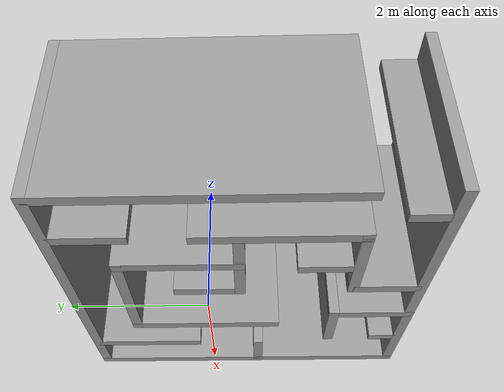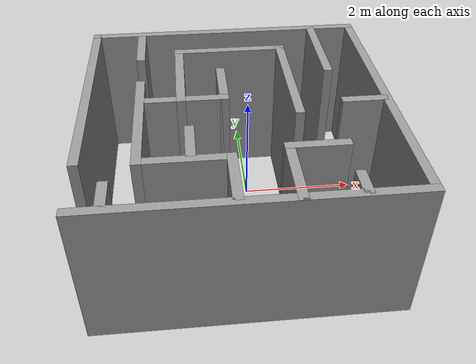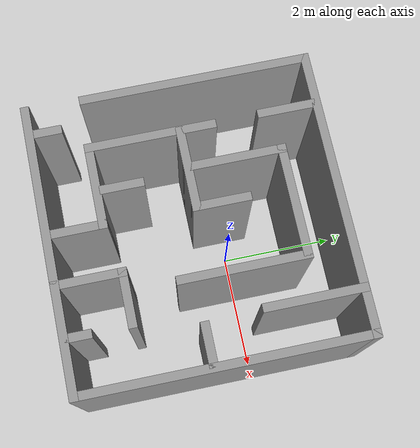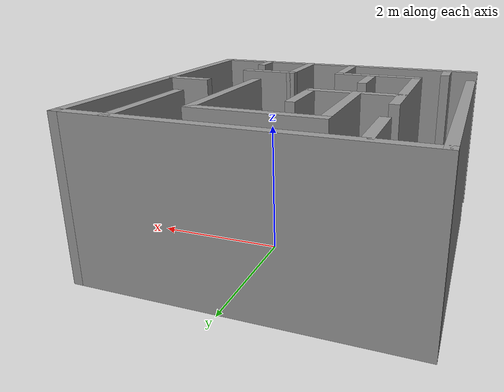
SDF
<?xml version='1.0'?>
<sdf version='1.7'>
  <model name='maze'>
    <pose>-0.245514 -0.533477 0 0 -0 0</pose>
    <link name='Wall_14'>
      <collision name='Wall_14_Collision'>
        <geometry>
          <box>
            <size>5 0.15 2.5</size>
          </box>
        </geometry>
        <pose>0 0 1.25 0 -0 0</pose>
      </collision>
      <visual name='Wall_14_Visual'>
        <pose>0 0 1.25 0 -0 0</pose>
        <geometry>
          <box>
            <size>5 0.15 2.5</size>
          </box>
        </geometry>
        <material>
          <script>
            <uri>file://media/materials/scripts/gazebo.material</uri>
            <name>Gazebo/Grey</name>
          </script>
          <ambient>1 1 1 1</ambient>
        </material>
        <meta>
          <layer>0</layer>
        </meta>
      </visual>
      <pose>-0 -2.425 0 0 -0 0</pose>
    </link>
    <link name='Wall_15'>
      <collision name='Wall_15_Collision'>
        <geometry>
          <box>
            <size>5 0.15 2.5</size>
          </box>
        </geometry>
        <pose>0 0 1.25 0 -0 0</pose>
      </collision>
      <visual name='Wall_15_Visual'>
        <pose>0 0 1.25 0 -0 0</pose>
        <geometry>
          <box>
            <size>5 0.15 2.5</size>
          </box>
        </geometry>
        <material>
          <script>
            <uri>file://media/materials/scripts/gazebo.material</uri>
            <name>Gazebo/Grey</name>
          </script>
          <ambient>1 1 1 1</ambient>
        </material>
        <meta>
          <layer>0</layer>
        </meta>
      </visual>
      <pose>2.425 -0 0 0 -0 1.5708</pose>
    </link>
    <link name='Wall_16'>
      <collision name='Wall_16_Collision'>
        <geometry>
          <box>
            <size>5 0.15 2.5</size>
          </box>
        </geometry>
        <pose>0 0 1.25 0 -0 0</pose>
      </collision>
      <visual name='Wall_16_Visual'>
        <pose>0 0 1.25 0 -0 0</pose>
        <geometry>
          <box>
            <size>5 0.15 2.5</size>
          </box>
        </geometry>
        <material>
          <script>
            <uri>file://media/materials/scripts/gazebo.material</uri>
            <name>Gazebo/Grey</name>
          </script>
          <ambient>1 1 1 1</ambient>
        </material>
        <meta>
          <layer>0</layer>
        </meta>
      </visual>
      <pose>-0 2.425 0 0 -0 3.14159</pose>
    </link>
    <link name='Wall_17'>
      <collision name='Wall_17_Collision'>
        <geometry>
          <box>
            <size>4 0.15 2.5</size>
          </box>
        </geometry>
        <pose>0 0 1.25 0 -0 0</pose>
      </collision>
      <visual name='Wall_17_Visual'>
        <pose>0 0 1.25 0 -0 0</pose>
        <geometry>
          <box>
            <size>4 0.15 2.5</size>
          </box>
        </geometry>
        <material>
          <script>
            <uri>file://media/materials/scripts/gazebo.material</uri>
            <name>Gazebo/Grey</name>
          </script>
          <ambient>1 1 1 1</ambient>
        </material>
        <meta>
          <layer>0</layer>
        </meta>
      </visual>
      <pose>-2.425 0.5 0 0 -0 -1.5708</pose>
    </link>
    <link name='Wall_22'>
      <collision name='Wall_22_Collision'>
        <geometry>
          <box>
            <size>2.25 0.15 2.5</size>
          </box>
        </geometry>
        <pose>0 0 1.25 0 -0 0</pose>
      </collision>
      <visual name='Wall_22_Visual'>
        <pose>0 0 1.25 0 -0 0</pose>
        <geometry>
          <box>
            <size>2.25 0.15 2.5</size>
          </box>
        </geometry>
        <material>
          <script>
            <uri>file://media/materials/scripts/gazebo.material</uri>
            <name>Gazebo/Grey</name>
          </script>
          <ambient>1 1 1 1</ambient>
        </material>
        <meta>
          <layer>0</layer>
        </meta>
      </visual>
      <pose>-1.56012 -0.437851 0 0 -0 -1.5708</pose>
    </link>
    <link name='Wall_23'>
      <collision name='Wall_23_Collision'>
        <geometry>
          <box>
            <size>1.5 0.15 2.5</size>
          </box>
        </geometry>
        <pose>0 0 1.25 0 -0 0</pose>
      </collision>
      <visual name='Wall_23_Visual'>
        <pose>0 0 1.25 0 -0 0</pose>
        <geometry>
          <box>
            <size>1.5 0.15 2.5</size>
          </box>
        </geometry>
        <material>
          <script>
            <uri>file://media/materials/scripts/gazebo.material</uri>
            <name>Gazebo/Grey</name>
          </script>
          <ambient>1 1 1 1</ambient>
        </material>
        <meta>
          <layer>0</layer>
        </meta>
      </visual>
      <pose>-0.885116 -1.48785 0 0 -0 0</pose>
    </link>
    <link name='Wall_24'>
      <collision name='Wall_24_Collision'>
        <geometry>
          <box>
            <size>1 0.15 2.5</size>
          </box>
        </geometry>
        <pose>0 0 1.25 0 -0 0</pose>
      </collision>
      <visual name='Wall_24_Visual'>
        <pose>0 0 1.25 0 -0 0</pose>
        <geometry>
          <box>
            <size>1 0.15 2.5</size>
          </box>
        </geometry>
        <material>
          <script>
            <uri>file://media/materials/scripts/gazebo.material</uri>
            <name>Gazebo/Grey</name>
          </script>
          <ambient>1 1 1 1</ambient>
        </material>
        <meta>
          <layer>0</layer>
        </meta>
      </visual>
      <pose>-0.210116 -1.91285 0 0 -0 -1.5708</pose>
    </link>
    <link name='Wall_26'>
      <collision name='Wall_26_Collision'>
        <geometry>
          <box>
            <size>1 0.15 2.5</size>
          </box>
        </geometry>
        <pose>0 0 1.25 0 -0 0</pose>
      </collision>
      <visual name='Wall_26_Visual'>
        <pose>0 0 1.25 0 -0 0</pose>
        <geometry>
          <box>
            <size>1 0.15 2.5</size>
          </box>
        </geometry>
        <material>
          <script>
            <uri>file://media/materials/scripts/gazebo.material</uri>
            <name>Gazebo/Grey</name>
          </script>
          <ambient>1 1 1 1</ambient>
        </material>
        <meta>
          <layer>0</layer>
        </meta>
      </visual>
      <pose>-1.58023 1.90203 0 0 -0 1.5708</pose>
    </link>
    <link name='Wall_48'>
      <collision name='Wall_48_Collision'>
        <geometry>
          <box>
            <size>1.5 0.15 2.5</size>
          </box>
        </geometry>
        <pose>0 0 1.25 0 -0 0</pose>
      </collision>
      <visual name='Wall_48_Visual'>
        <pose>0 0 1.25 0 -0 0</pose>
        <geometry>
          <box>
            <size>1.5 0.15 2.5</size>
          </box>
        </geometry>
        <material>
          <script>
            <uri>file://media/materials/scripts/gazebo.material</uri>
            <name>Gazebo/Grey</name>
          </script>
          <ambient>1 1 1 1</ambient>
        </material>
        <meta>
          <layer>0</layer>
        </meta>
      </visual>
      <pose>-0.870882 0.067288 0 0 -0 0</pose>
    </link>
    <link name='Wall_49'>
      <collision name='Wall_49_Collision'>
        <geometry>
          <box>
            <size>1 0.15 2.5</size>
          </box>
        </geometry>
        <pose>0 0 1.25 0 -0 0</pose>
      </collision>
      <visual name='Wall_49_Visual'>
        <pose>0 0 1.25 0 -0 0</pose>
        <geometry>
          <box>
            <size>1 0.15 2.5</size>
          </box>
        </geometry>
        <material>
          <script>
            <uri>file://media/materials/scripts/gazebo.material</uri>
            <name>Gazebo/Grey</name>
          </script>
          <ambient>1 1 1 1</ambient>
        </material>
        <meta>
          <layer>0</layer>
        </meta>
      </visual>
      <pose>-0.195882 0.492288 0 0 -0 1.5708</pose>
    </link>
    <link name='Wall_55'>
      <collision name='Wall_55_Collision'>
        <geometry>
          <box>
            <size>1.75 0.15 2.5</size>
          </box>
        </geometry>
        <pose>0 0 1.25 0 -0 0</pose>
      </collision>
      <visual name='Wall_55_Visual'>
        <pose>0 0 1.25 0 -0 0</pose>
        <geometry>
          <box>
            <size>1.75 0.15 2.5</size>
          </box>
        </geometry>
        <material>
          <script>
            <uri>file://media/materials/scripts/gazebo.material</uri>
            <name>Gazebo/Grey</name>
          </script>
          <ambient>1 1 1 1</ambient>
        </material>
        <meta>
          <layer>0</layer>
        </meta>
      </visual>
      <pose>-0.897857 0.867288 0 0 -0 1.5708</pose>
    </link>
    <link name='Wall_56'>
      <collision name='Wall_56_Collision'>
        <geometry>
          <box>
            <size>2 0.15 2.5</size>
          </box>
        </geometry>
        <pose>0 0 1.25 0 -0 0</pose>
      </collision>
      <visual name='Wall_56_Visual'>
        <pose>0 0 1.25 0 -0 0</pose>
        <geometry>
          <box>
            <size>2 0.15 2.5</size>
          </box>
        </geometry>
        <material>
          <script>
            <uri>file://media/materials/scripts/gazebo.material</uri>
            <name>Gazebo/Grey</name>
          </script>
          <ambient>1 1 1 1</ambient>
        </material>
        <meta>
          <layer>0</layer>
        </meta>
      </visual>
      <pose>0.027143 1.66729 0 0 -0 0</pose>
    </link>
    <link name='Wall_57'>
      <collision name='Wall_57_Collision'>
        <geometry>
          <box>
            <size>2.25 0.15 2.5</size>
          </box>
        </geometry>
        <pose>0 0 1.25 0 -0 0</pose>
      </collision>
      <visual name='Wall_57_Visual'>
        <pose>0 0 1.25 0 -0 0</pose>
        <geometry>
          <box>
            <size>2.25 0.15 2.5</size>
          </box>
        </geometry>
        <material>
          <script>
            <uri>file://media/materials/scripts/gazebo.material</uri>
            <name>Gazebo/Grey</name>
          </script>
          <ambient>1 1 1 1</ambient>
        </material>
        <meta>
          <layer>0</layer>
        </meta>
      </visual>
      <pose>0.952143 0.617288 0 0 -0 -1.5708</pose>
    </link>
    <link name='Wall_61'>
      <collision name='Wall_61_Collision'>
        <geometry>
          <box>
            <size>1.25 0.15 2.5</size>
          </box>
        </geometry>
        <pose>0 0 1.25 0 -0 0</pose>
      </collision>
      <visual name='Wall_61_Visual'>
        <pose>0 0 1.25 0 -0 0</pose>
        <geometry>
          <box>
            <size>1.25 0.15 2.5</size>
          </box>
        </geometry>
        <material>
          <script>
            <uri>file://media/materials/scripts/gazebo.material</uri>
            <name>Gazebo/Grey</name>
          </script>
          <ambient>1 1 1 1</ambient>
        </material>
        <meta>
          <layer>0</layer>
        </meta>
      </visual>
      <pose>0.636243 -1.86901 0 0 -0 1.5708</pose>
    </link>
    <link name='Wall_62'>
      <collision name='Wall_62_Collision'>
        <geometry>
          <box>
            <size>1 0.15 2.5</size>
          </box>
        </geometry>
        <pose>0 0 1.25 0 -0 0</pose>
      </collision>
      <visual name='Wall_62_Visual'>
        <pose>0 0 1.25 0 -0 0</pose>
        <geometry>
          <box>
            <size>1 0.15 2.5</size>
          </box>
        </geometry>
        <material>
          <script>
            <uri>file://media/materials/scripts/gazebo.material</uri>
            <name>Gazebo/Grey</name>
          </script>
          <ambient>1 1 1 1</ambient>
        </material>
        <meta>
          <layer>0</layer>
        </meta>
      </visual>
      <pose>1.06124 -1.31901 0 0 -0 0</pose>
    </link>
    <link name='Wall_70'>
      <collision name='Wall_70_Collision'>
        <geometry>
          <box>
            <size>0.5 0.15 2.5</size>
          </box>
        </geometry>
        <pose>0 0 1.25 0 -0 0</pose>
      </collision>
      <visual name='Wall_70_Visual'>
        <pose>0 0 1.25 0 -0 0</pose>
        <geometry>
          <box>
            <size>0.5 0.15 2.5</size>
          </box>
        </geometry>
        <material>
          <script>
            <uri>file://media/materials/scripts/gazebo.material</uri>
            <name>Gazebo/Grey</name>
          </script>
          <ambient>1 1 1 1</ambient>
        </material>
        <meta>
          <layer>0</layer>
        </meta>
      </visual>
      <pose>-1.98231 -2.11791 0 0 -0 -1.5708</pose>
    </link>
    <link name='Wall_76'>
      <collision name='Wall_76_Collision'>
        <geometry>
          <box>
            <size>1.75 0.15 2.5</size>
          </box>
        </geometry>
        <pose>0 0 1.25 0 -0 0</pose>
      </collision>
      <visual name='Wall_76_Visual'>
        <pose>0 0 1.25 0 -0 0</pose>
        <geometry>
          <box>
            <size>1.75 0.15 2.5</size>
          </box>
        </geometry>
        <material>
          <script>
            <uri>file://media/materials/scripts/gazebo.material</uri>
            <name>Gazebo/Grey</name>
          </script>
          <ambient>1 1 1 1</ambient>
        </material>
        <meta>
          <layer>0</layer>
        </meta>
      </visual>
      <pose>1.66779 1.62134 0 0 -0 -1.5708</pose>
    </link>
    <link name='Wall_81'>
      <collision name='Wall_81_Collision'>
        <geometry>
          <box>
            <size>0.75 0.15 2.5</size>
          </box>
        </geometry>
        <pose>0 0 1.25 0 -0 0</pose>
      </collision>
      <visual name='Wall_81_Visual'>
        <pose>0 0 1.25 0 -0 0</pose>
        <geometry>
          <box>
            <size>0.75 0.15 2.5</size>
          </box>
        </geometry>
        <material>
          <script>
            <uri>file://media/materials/scripts/gazebo.material</uri>
            <name>Gazebo/Grey</name>
          </script>
          <ambient>1 1 1 1</ambient>
        </material>
        <meta>
          <layer>0</layer>
        </meta>
      </visual>
      <pose>2.05549 -0.197212 0 0 -0 3.14159</pose>
    </link>
    <link name='Wall_83'>
      <collision name='Wall_83_Collision'>
        <geometry>
          <box>
            <size>0.75 0.15 2.5</size>
          </box>
        </geometry>
        <pose>0 0 1.25 0 -0 0</pose>
      </collision>
      <visual name='Wall_83_Visual'>
        <pose>0 0 1.25 0 -0 0</pose>
        <geometry>
          <box>
            <size>0.75 0.15 2.5</size>
          </box>
        </geometry>
        <material>
          <script>
            <uri>file://media/materials/scripts/gazebo.material</uri>
            <name>Gazebo/Grey</name>
          </script>
          <ambient>1 1 1 1</ambient>
        </material>
        <meta>
          <layer>0</layer>
        </meta>
      </visual>
      <pose>-0.792057 -1.06589 0 0 -0 -1.5708</pose>
    </link>
    <link name='Wall_86'>
      <collision name='Wall_86_Collision'>
        <geometry>
          <box>
            <size>0.5 0.15 2.5</size>
          </box>
        </geometry>
        <pose>0 0 1.25 0 -0 0</pose>
      </collision>
      <visual name='Wall_86_Visual'>
        <pose>0 0 1.25 0 -0 0</pose>
        <geometry>
          <box>
            <size>0.5 0.15 2.5</size>
          </box>
        </geometry>
        <material>
          <script>
            <uri>file://media/materials/scripts/gazebo.material</uri>
            <name>Gazebo/Grey</name>
          </script>
          <ambient>1 1 1 1</ambient>
        </material>
        <meta>
          <layer>0</layer>
        </meta>
      </visual>
      <pose>1.50909 -2.21756 0 0 -0 1.5708</pose>
    </link>
    <static>1</static>
  </model>
</sdf>
